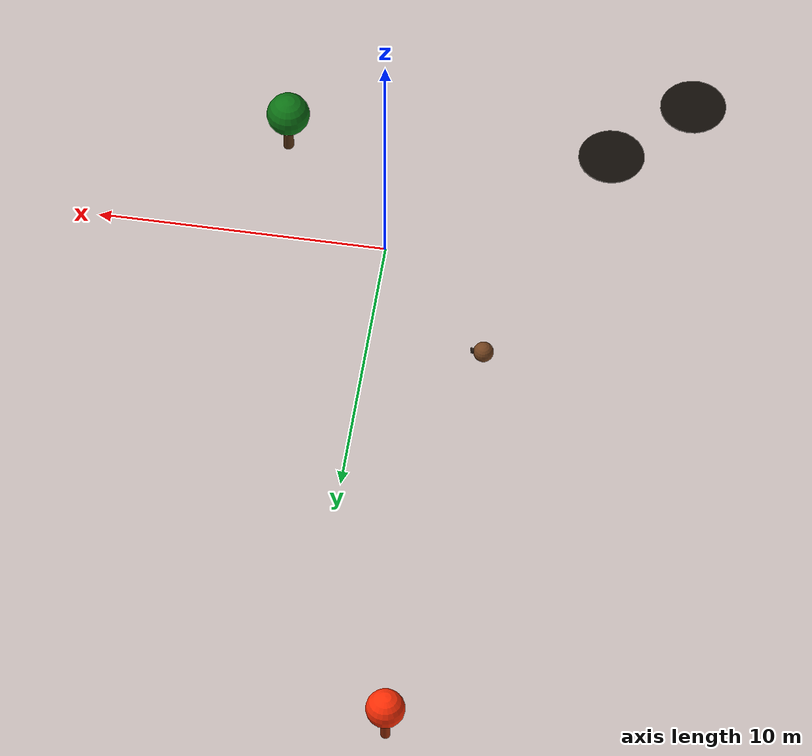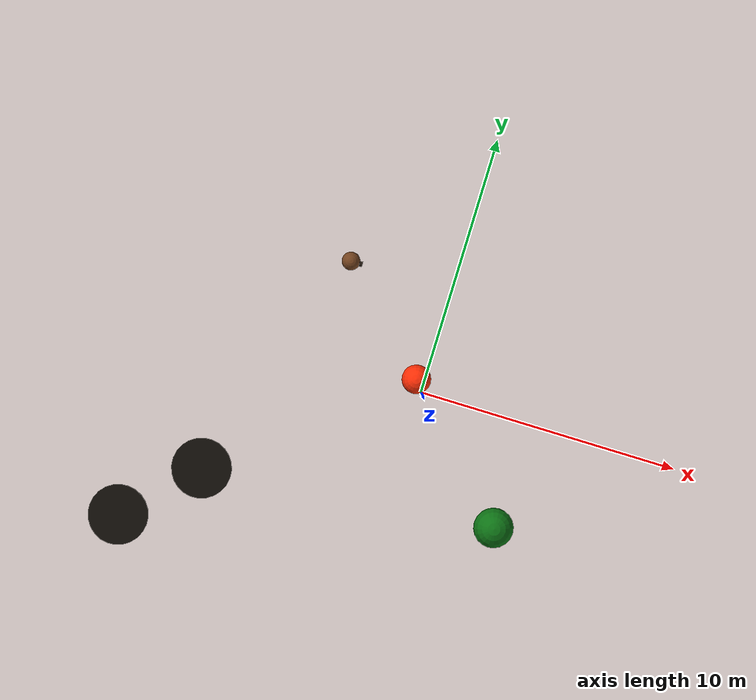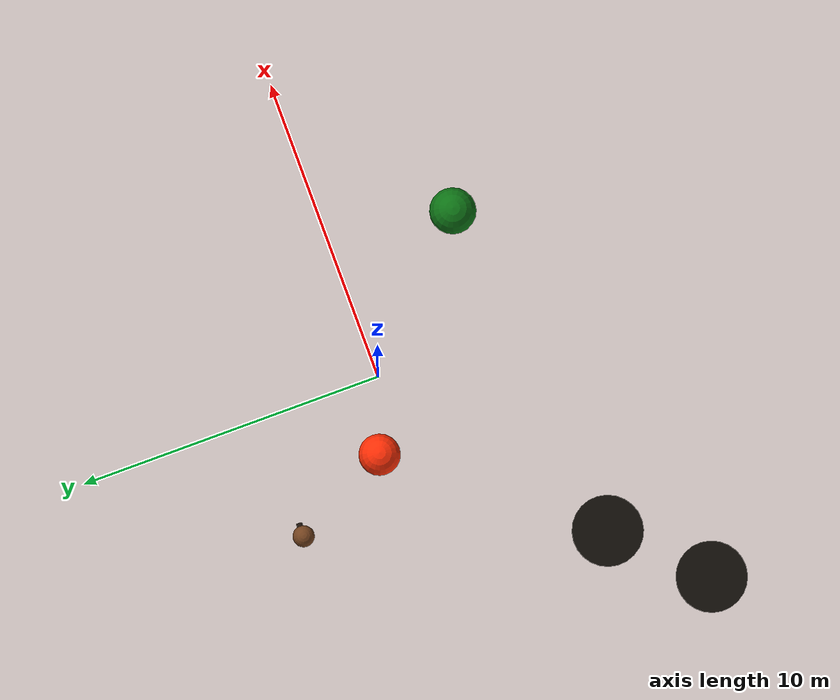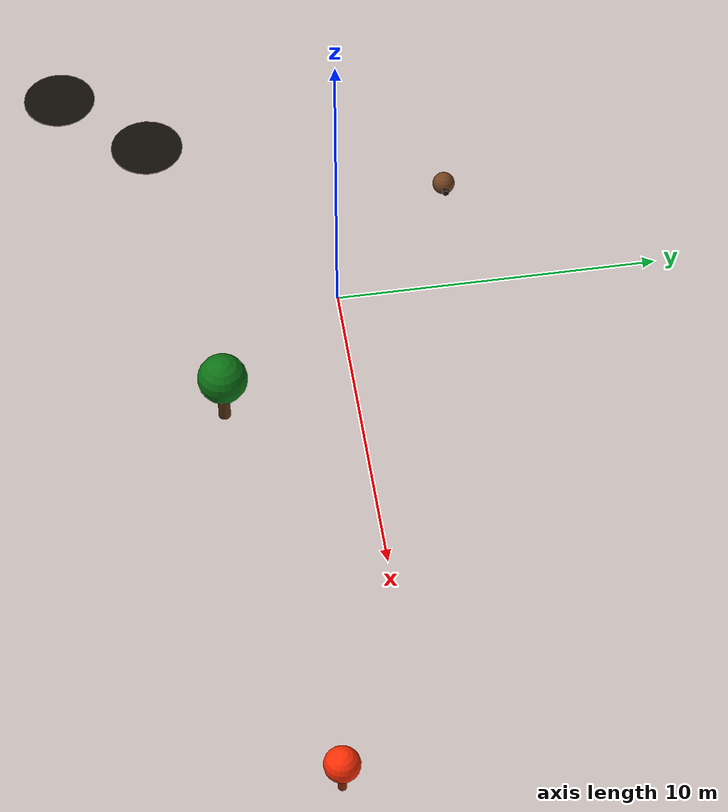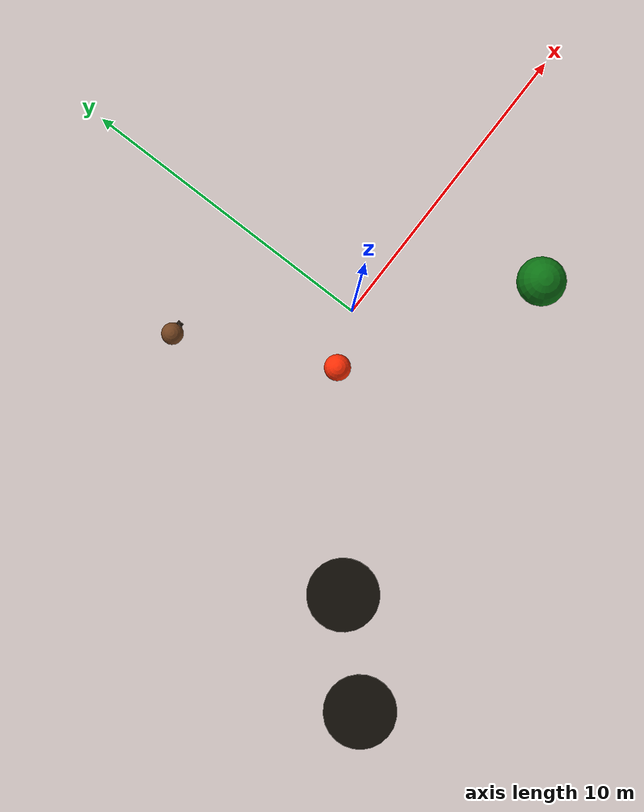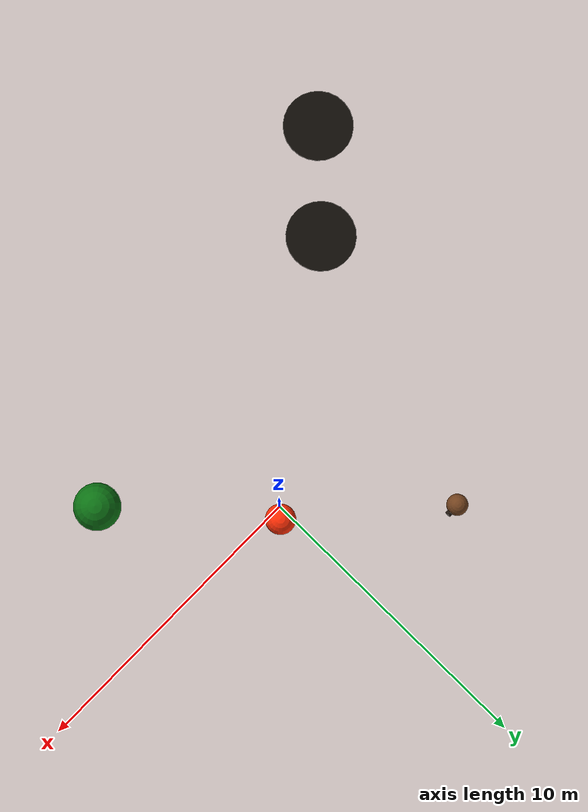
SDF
<sdf version="1.8">
 <world name="large_demo">
  <light name="sun" type="directional">
   <cast_shadows>0</cast_shadows>
   <pose>0 0 100 0 -0 0</pose>
   <diffuse>0.8 0.8 0.8 1</diffuse>
   <specular>0.8 0.8 0.8 1</specular>
   <direction>-0.5 0.1 -0.9</direction>
   <intensity>5</intensity>
  </light>
  <gravity>0 0 -9.81</gravity>
  <magnetic_field>6e-06 2.3e-05 -4.2e-05</magnetic_field>
  <atmosphere type="adiabatic"/>
  <physics name="default_physics" type="ignored">
   <max_step_size>0.01</max_step_size>
   <real_time_factor>1</real_time_factor>
   <real_time_update_rate>100</real_time_update_rate>
  </physics>
  <scene>
   <ambient>1.0 1.0 1.0 1</ambient>
   <background>0.6 0.8 1.0 1</background>
   <shadows>0</shadows>
   <grid>0</grid>
  </scene>
  <spherical_coordinates>
   <latitude_deg>0.0</latitude_deg>
   <longitude_deg>0.0</longitude_deg>
   <elevation>10.0</elevation>
   <heading_deg>0</heading_deg>
   <surface_model>EARTH_WGS84</surface_model>
  </spherical_coordinates>
  <include>
   <uri>model://fire_hotspot</uri>
   <name>fire hotspot1</name>
   <pose>-7.16 -5.17 0 0 -0 0.2</pose>
  </include>
  <include>
   <uri>model://fire_hotspot</uri>
   <name>fire hotspot2</name>
   <pose>-9.68 -7.77 0 0 -0 0.2</pose>
  </include>
  <model name="demo_animal">
   <pose>-4 4 0 0 0 0</pose>
   <static>true</static>
   <link name="body">
    <collision name="body_collision">
     <pose>0 0 0.25 0 0 0</pose>
     <geometry><sphere><radius>0.35</radius></sphere></geometry>
    </collision>
    <visual name="body_visual">
     <pose>0 0 0.25 0 0 0</pose>
     <geometry><sphere><radius>0.35</radius></sphere></geometry>
     <material><ambient>0.35 0.20 0.10 1</ambient><diffuse>0.45 0.26 0.12 1</diffuse></material>
    </visual>
    <visual name="nose_visual">
     <pose>0.32 0 0.25 0 1.5708 0</pose>
     <geometry><cylinder><radius>0.10</radius><length>0.25</length></cylinder></geometry>
     <material><ambient>0.10 0.07 0.05 1</ambient><diffuse>0.12 0.08 0.05 1</diffuse></material>
    </visual>
   </link>
  </model>
  <model name="demo_tree_healthy">
   <pose>4 -4 0 0 0 0</pose>
   <static>true</static>
   <link name="tree">
    <collision name="trunk_collision">
     <pose>0 0 0.75 0 0 0</pose>
     <geometry><cylinder><radius>0.18</radius><length>1.5</length></cylinder></geometry>
    </collision>
    <collision name="canopy_collision">
     <pose>0 0 1.75 0 0 0</pose>
     <geometry><sphere><radius>0.75</radius></sphere></geometry>
    </collision>
    <visual name="trunk_visual">
     <pose>0 0 0.75 0 0 0</pose>
     <geometry><cylinder><radius>0.18</radius><length>1.5</length></cylinder></geometry>
     <material><ambient>0.35 0.20 0.08 1</ambient><diffuse>0.35 0.20 0.08 1</diffuse></material>
    </visual>
    <visual name="canopy_visual">
     <pose>0 0 1.75 0 0 0</pose>
     <geometry><sphere><radius>0.75</radius></sphere></geometry>
     <material><ambient>0.05 0.45 0.08 1</ambient><diffuse>0.05 0.45 0.08 1</diffuse></material>
    </visual>
   </link>
  </model>
  <model name="demo_tree_fire">
   <pose>0 0 -30 0 0 0</pose>
   <static>true</static>
   <link name="tree">
    <collision name="trunk_collision">
     <pose>0 0 0.75 0 0 0</pose>
     <geometry><cylinder><radius>0.18</radius><length>1.5</length></cylinder></geometry>
    </collision>
    <collision name="canopy_collision">
     <pose>0 0 1.75 0 0 0</pose>
     <geometry><sphere><radius>0.75</radius></sphere></geometry>
    </collision>
    <visual name="trunk_visual">
     <pose>0 0 0.75 0 0 0</pose>
     <geometry><cylinder><radius>0.18</radius><length>1.5</length></cylinder></geometry>
     <material><ambient>0.60 0.18 0.04 1</ambient><diffuse>0.60 0.18 0.04 1</diffuse></material>
    </visual>
    <visual name="canopy_visual">
     <pose>0 0 1.75 0 0 0</pose>
     <geometry><sphere><radius>0.75</radius></sphere></geometry>
     <material><ambient>1.0 0.18 0.02 1</ambient><diffuse>1.0 0.18 0.02 1</diffuse></material>
    </visual>
   </link>
  </model>
  <model name="demo_tree_burnt">
   <pose>0 0 -30 0 0 0</pose>
   <static>true</static>
   <link name="tree">
    <collision name="trunk_collision">
     <pose>0 0 0.75 0 0 0</pose>
     <geometry><cylinder><radius>0.18</radius><length>1.5</length></cylinder></geometry>
    </collision>
    <collision name="canopy_collision">
     <pose>0 0 1.75 0 0 0</pose>
     <geometry><sphere><radius>0.75</radius></sphere></geometry>
    </collision>
    <visual name="trunk_visual">
     <pose>0 0 0.75 0 0 0</pose>
     <geometry><cylinder><radius>0.18</radius><length>1.5</length></cylinder></geometry>
     <material><ambient>0.10 0.07 0.04 1</ambient><diffuse>0.10 0.07 0.04 1</diffuse></material>
    </visual>
    <visual name="canopy_visual">
     <pose>0 0 1.75 0 0 0</pose>
     <geometry><sphere><radius>0.75</radius></sphere></geometry>
     <material><ambient>0.12 0.08 0.04 1</ambient><diffuse>0.12 0.08 0.04 1</diffuse></material>
    </visual>
   </link>
  </model>
 </world>
</sdf>

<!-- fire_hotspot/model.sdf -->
<sdf version="1.7">

  <model name="fire_hotspot">
    <static>true</static>

    <link name="fire_link">

      <!-- SCORCHED GROUND -->

      <visual name="burnt_ground">
        <pose>0 0 0.015 0 0 0</pose>

        <geometry>
          <cylinder>
            <radius>1.15</radius>
            <length>0.025</length>
          </cylinder>
        </geometry>

        <material>
          <ambient>0.035 0.025 0.015 1</ambient>
          <diffuse>0.06 0.045 0.025 1</diffuse>
          <roughness>1.0</roughness>
        </material>
      </visual>

      <!-- FIRE GLOW -->

      <light name="fire_light" type="point">
        <pose>0 0 0.55 0 0 0</pose>

        <diffuse>1.0 0.32 0.05 1</diffuse>
        <specular>0.4 0.15 0.02 1</specular>

        <attenuation>
          <range>5</range>
          <constant>0.5</constant>
          <linear>0.15</linear>
          <quadratic>0.05</quadratic>
        </attenuation>
      </light>

      <!-- MAIN FLAME PARTICLES -->

      <particle_emitter name="main_flame" type="box">

        <pose>0 0 0.15 0 0 0</pose>

        <emitting>true</emitting>

        <size>5.0 1.2 0.10</size>

        <particle_size>
          0.18 0.32 0.05
        </particle_size>

        <rate>45</rate>

        <lifetime>0.75</lifetime>

        <min_velocity>0.45</min_velocity>
        <max_velocity>1.20</max_velocity>

        <scale_rate>0.35</scale_rate>

        <color_start>
          1.0 0.65 0.05 0.95
        </color_start>

        <color_end>
          0.9 0.04 0.01 0.05
        </color_end>

      </particle_emitter>

      <!-- SMALL SIDE FLAME -->

      <particle_emitter name="side_flame_1" type="box">

        <pose>0.38 0.15 0.12 0 0 0</pose>

        <emitting>true</emitting>

        <size>0.31 0.38 0.08</size>

        <particle_size>
          0.12 0.24 0.04
        </particle_size>

        <rate>25</rate>

        <lifetime>0.55</lifetime>

        <min_velocity>0.35</min_velocity>
        <max_velocity>0.90</max_velocity>

        <scale_rate>0.25</scale_rate>

        <color_start>
          1.0 0.75 0.08 0.9
        </color_start>

        <color_end>
          1.0 0.05 0.0 0.02
        </color_end>

      </particle_emitter>

      <!-- SECOND SIDE FLAME -->

      <particle_emitter name="side_flame_2" type="box">

        <pose>-0.32 -0.18 0.12 0 0 0</pose>

        <emitting>true</emitting>

        <size>0.35 0.28 0.08</size>

        <particle_size>
          0.11 0.22 0.04
        </particle_size>

        <rate>22</rate>

        <lifetime>0.50</lifetime>

        <min_velocity>0.30</min_velocity>
        <max_velocity>0.85</max_velocity>

        <scale_rate>0.25</scale_rate>

        <color_start>
          1.0 0.55 0.03 0.9
        </color_start>

        <color_end>
          0.8 0.03 0.0 0.02
        </color_end>

      </particle_emitter>

      <!-- SMOKE -->

      <particle_emitter name="smoke" type="box">

        <pose>0 0 0.65 0 0 0</pose>

        <emitting>true</emitting>

        <size>0.50 0.50 0.10</size>

        <particle_size>
          0.35 0.35 0.10
        </particle_size>

        <rate>12</rate>

        <lifetime>3.0</lifetime>

        <min_velocity>0.25</min_velocity>
        <max_velocity>0.60</max_velocity>

        <scale_rate>0.45</scale_rate>

        <color_start>
          0.12 0.12 0.12 0.55
        </color_start>

        <color_end>
          0.35 0.35 0.35 0.0
        </color_end>

      </particle_emitter>

    </link>
  </model>

</sdf>
